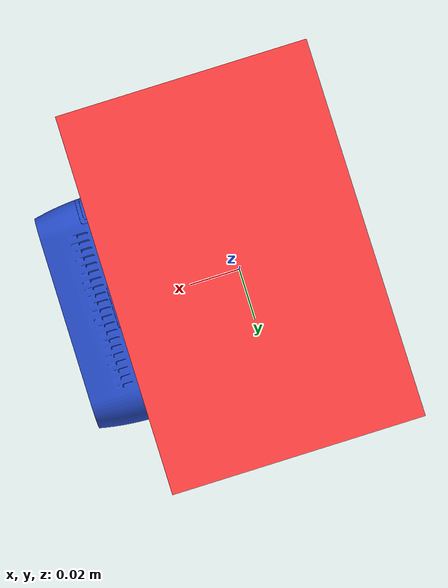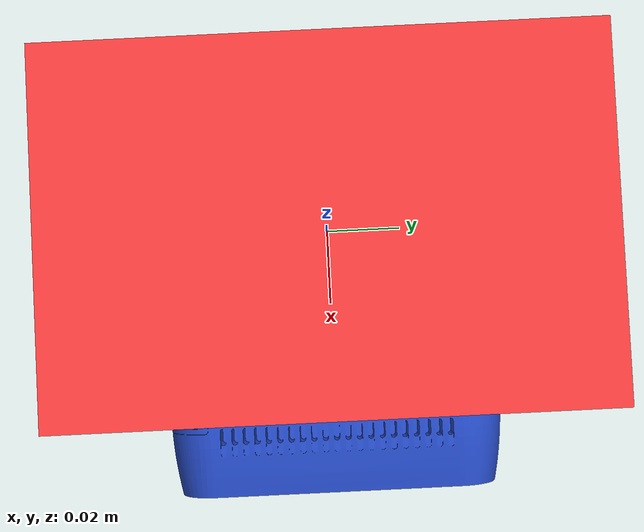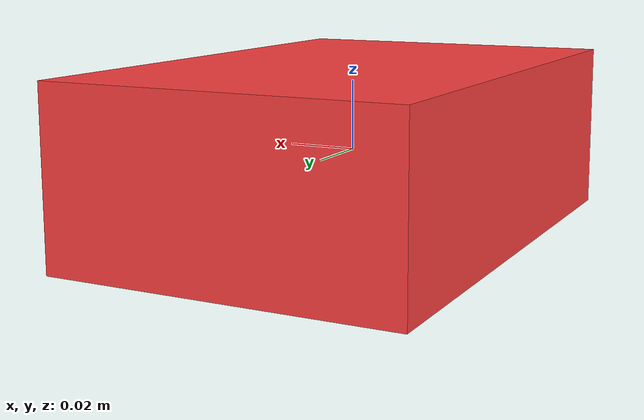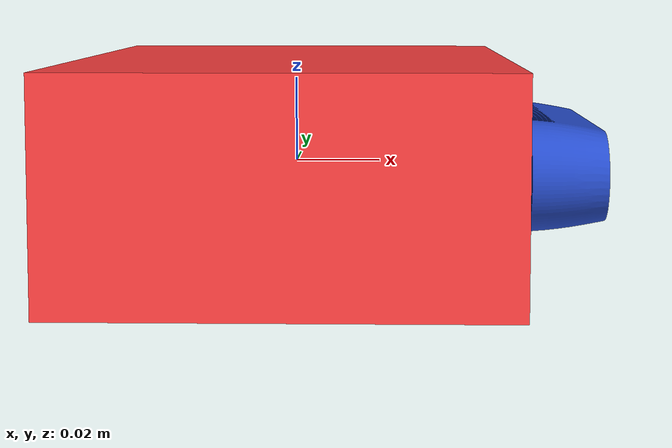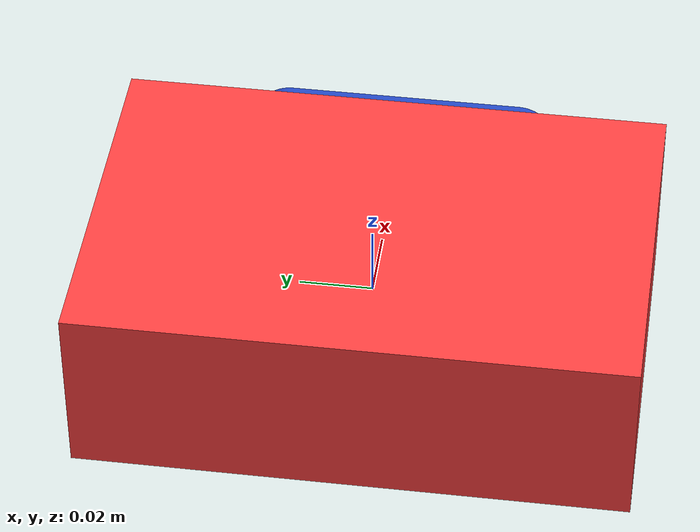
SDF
<sdf version='1.11'>
  <model name='robot_3d'>
    <link name='dummy_link'>
      <inertial>
        <pose>0.00069306930693069314 0 0 0 0 0</pose>
        <mass>1.01</mass>
        <inertia>
          <ixx>0.103881243</ixx>
          <ixy>0</ixy>
          <ixz>0</ixz>
          <iyy>0.1005474548514852</iyy>
          <iyz>0</iyz>
          <izz>0.1039277718514852</izz>
        </inertia>
      </inertial>
      <collision name='dummy_link_fixed_joint_lump__base_link_collision'>
        <pose>0 0 0 0 0 0</pose>
        <geometry>
          <box>
            <size>0.10000000000000001 0.14999999999999999 0.050000000000000003</size>
          </box>
        </geometry>
        <surface>
          <contact>
            <ode/>
          </contact>
          <friction>
            <ode/>
          </friction>
        </surface>
      </collision>
      <visual name='dummy_link_visual'>
        <pose>0 0 0 0 0 0</pose>
        <geometry>
          <box>
            <size>0.001 0.001 0.001</size>
          </box>
        </geometry>
        <material>
          <diffuse>0 0 0 0</diffuse>
          <ambient>0 0 0 0</ambient>
        </material>
      </visual>
      <visual name='dummy_link_fixed_joint_lump__camera_link_visual_1'>
        <pose>0.070000000000000007 0 0 1.5707963267948959 -5.5511151231257827e-17 1.5707963267948959</pose>
        <geometry>
          <mesh>
            <scale>1 1 1</scale>
            <uri>file:///home/tafarrel/ros2_ws/install/camera_description/share/camera_description/meshes/intel_realsense/visual/d435.stl</uri>
          </mesh>
        </geometry>
        <material>
          <script>
            <name>Gazebo/Blue</name>
            <uri>file://media/materials/scripts/gazebo.material</uri>
          </script>
          <diffuse>0.625 0.25 0.25 1</diffuse>
          <ambient>0.625 0.25 0.25 1</ambient>
        </material>
      </visual>
      <visual name='dummy_link_fixed_joint_lump__base_link_visual_2'>
        <pose>0 0 0 0 0 0</pose>
        <geometry>
          <box>
            <size>0.10000000000000001 0.14999999999999999 0.050000000000000003</size>
          </box>
        </geometry>
        <material>
          <diffuse>1 0.25 0.25 1</diffuse>
          <ambient>1 0.25 0.25 1</ambient>
        </material>
      </visual>
      <sensor name='rgbd_camera' type='rgbd_camera'>
        <camera>
          <horizontal_fov>1.25</horizontal_fov>
          <image>
            <width>640</width>
            <height>480</height>
          </image>
          <clip>
            <near>0.29999999999999999</near>
            <far>15</far>
          </clip>
          <noise>
            <type>gaussian</type>
            <mean>0</mean>
            <stddev>0.0025000000000000001</stddev>
          </noise>
          <optical_frame_id>camera_link</optical_frame_id>
        </camera>
        <always_on>true</always_on>
        <update_rate>30</update_rate>
        <visualize>true</visualize>
        <topic>camera</topic>
        <pose>0.070000000000000007 0 0 0 0 0</pose>
        <gz_frame_id>camera_link</gz_frame_id>
      </sensor>
      <gravity>false</gravity>
    </link>
    <plugin name='gz::sim::systems::VelocityControl' filename='gz-sim-velocity-control-system'>
      <topic>cmd_vel</topic>
      <initial_linear>0 0 0</initial_linear>
      <initial_angular>0 0 0</initial_angular>
    </plugin>
    <plugin name='gz::sim::systems::OdometryPublisher' filename='gz-sim-odometry-publisher-system'>
      <dimensions>3</dimensions>
      <odom_topic>odom</odom_topic>
      <odom_frame>odom</odom_frame>
      <robot_base_frame>dummy_link</robot_base_frame>
      <publish_tf>true</publish_tf>
      <tf_topic>tf</tf_topic>
      <odom_publish_frequency>30</odom_publish_frequency>
      <xyz_offset>0 0 0</xyz_offset>
      <rpy_offset>0 0 0</rpy_offset>
    </plugin>
    <frame name='camera_color_optical_joint' attached_to='camera_color_frame'>
      <pose>0 0 0 -1.5707963267948959 -5.5511151231257827e-17 -1.5707963267948959</pose>
    </frame>
    <frame name='camera_color_optical_frame' attached_to='camera_color_optical_joint'>
      <pose>0 0 0 0 0 0</pose>
    </frame>
    <frame name='camera_color_joint' attached_to='camera_link'>
      <pose>0 0.014999999999999999 0 0 0 0</pose>
    </frame>
    <frame name='camera_color_frame' attached_to='camera_color_joint'>
      <pose>0 0 0 0 0 0</pose>
    </frame>
    <frame name='camera_depth_optical_joint' attached_to='camera_depth_frame'>
      <pose>0 0 0 -1.5707963267948959 -5.5511151231257827e-17 -1.5707963267948959</pose>
    </frame>
    <frame name='camera_depth_optical_frame' attached_to='camera_depth_optical_joint'>
      <pose>0 0 0 0 0 0</pose>
    </frame>
    <frame name='camera_depth_joint' attached_to='camera_link'>
      <pose>0 0 0 0 0 0</pose>
    </frame>
    <frame name='camera_depth_frame' attached_to='camera_depth_joint'>
      <pose>0 0 0 0 0 0</pose>
    </frame>
    <frame name='camera_infra1_optical_joint' attached_to='camera_infra1_frame'>
      <pose>0 0 0 -1.5707963267948959 -5.5511151231257827e-17 -1.5707963267948959</pose>
    </frame>
    <frame name='camera_infra1_optical_frame' attached_to='camera_infra1_optical_joint'>
      <pose>0 0 0 0 0 0</pose>
    </frame>
    <frame name='camera_infra1_joint' attached_to='camera_link'>
      <pose>0 0 0 0 0 0</pose>
    </frame>
    <frame name='camera_infra1_frame' attached_to='camera_infra1_joint'>
      <pose>0 0 0 0 0 0</pose>
    </frame>
    <frame name='camera_infra2_optical_joint' attached_to='camera_infra2_frame'>
      <pose>0 0 0 -1.5707963267948959 -5.5511151231257827e-17 -1.5707963267948959</pose>
    </frame>
    <frame name='camera_infra2_optical_frame' attached_to='camera_infra2_optical_joint'>
      <pose>0 0 0 0 0 0</pose>
    </frame>
    <frame name='camera_infra2_joint' attached_to='camera_link'>
      <pose>0 -0.050000000000000003 0 0 0 0</pose>
    </frame>
    <frame name='camera_infra2_frame' attached_to='camera_infra2_joint'>
      <pose>0 0 0 0 0 0</pose>
    </frame>
    <frame name='camera_joint' attached_to='dummy_link'>
      <pose>0.070000000000000007 0 0 0 0 0</pose>
    </frame>
    <frame name='camera_link' attached_to='camera_joint'>
      <pose>0 0 0 0 0 0</pose>
    </frame>
    <frame name='dummy_to_base' attached_to='dummy_link'>
      <pose>0 0 0 0 0 0</pose>
    </frame>
    <frame name='base_link' attached_to='dummy_to_base'>
      <pose>0 0 0 0 0 0</pose>
    </frame>
  </model>
</sdf>
